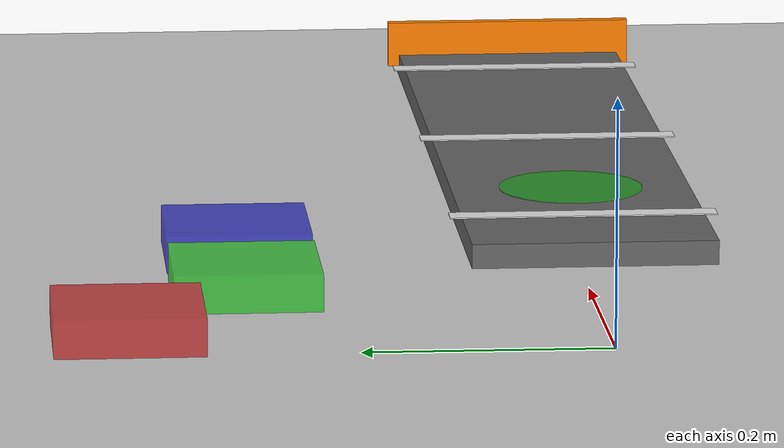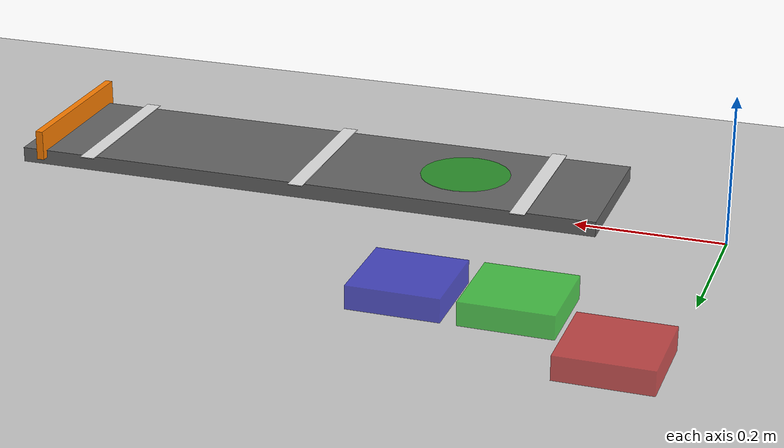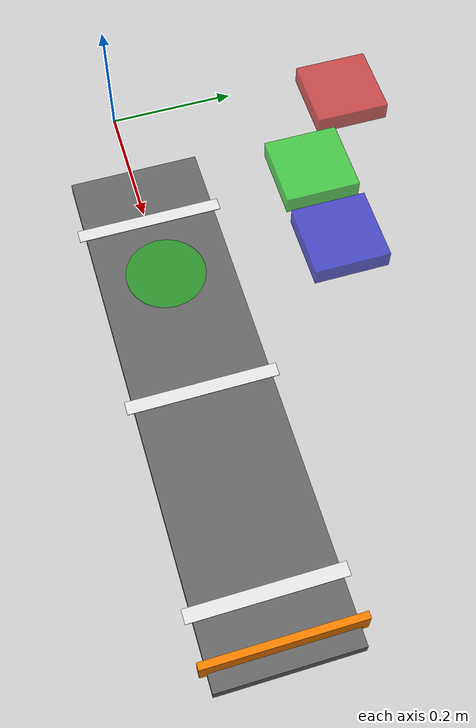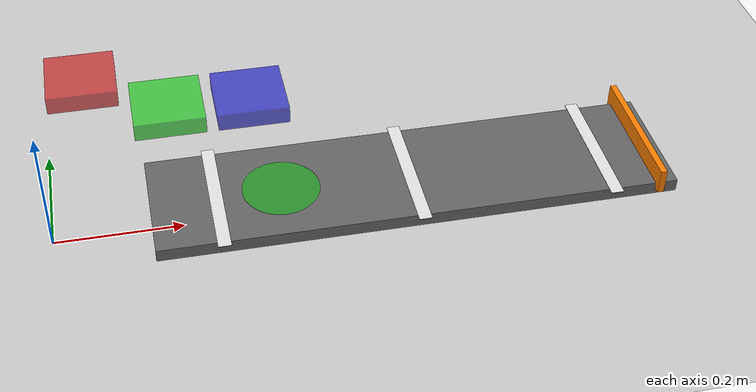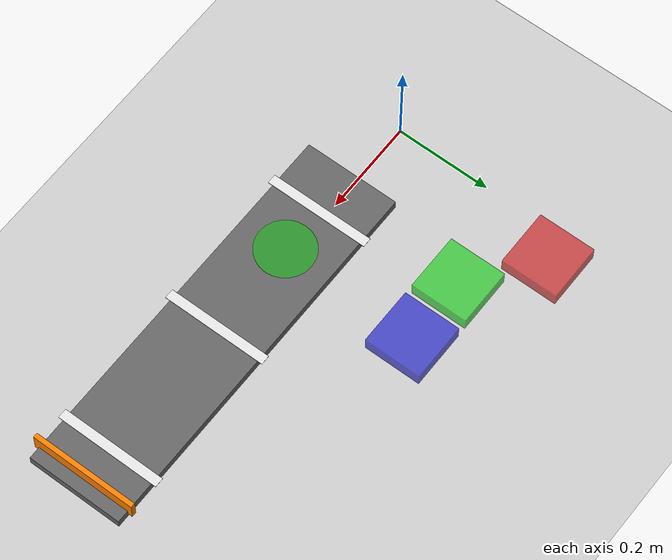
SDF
<?xml version="1.0" ?>
<sdf version="1.7">
  <world name="default">

    <gui fullscreen="0">
      <!-- Camera framed on this scene's workspace -->
      <plugin filename="MinimalScene" name="3D View">
        <gz-gui>
          <title>3D View</title>
          <property type="bool" key="showTitleBar">false</property>
          <property type="string" key="state">docked</property>
        </gz-gui>
        <engine>ogre2</engine>
        <scene>scene</scene>
        <ambient_light>0.4 0.4 0.4</ambient_light>
        <background_color>0.8 0.8 0.8</background_color>
        <camera_pose>-1.0 -1.3 1.1 0 0.47 0.79</camera_pose>
      </plugin>
      <plugin filename="EntityContextMenuPlugin" name="Entity context menu">
        <gz-gui>
          <property key="state" type="string">floating</property>
          <property key="width" type="double">5</property>
          <property key="height" type="double">5</property>
          <property key="showTitleBar" type="bool">false</property>
        </gz-gui>
      </plugin>
      <plugin filename="GzSceneManager" name="Scene Manager">
        <gz-gui>
          <property key="resizable" type="bool">false</property>
          <property key="width" type="double">5</property>
          <property key="height" type="double">5</property>
          <property key="state" type="string">floating</property>
          <property key="showTitleBar" type="bool">false</property>
        </gz-gui>
      </plugin>
      <plugin filename="InteractiveViewControl" name="Interactive view control">
        <gz-gui>
          <property key="resizable" type="bool">false</property>
          <property key="width" type="double">5</property>
          <property key="height" type="double">5</property>
          <property key="state" type="string">floating</property>
          <property key="showTitleBar" type="bool">false</property>
        </gz-gui>
      </plugin>
      <plugin filename="CameraTracking" name="Camera Tracking">
        <gz-gui>
          <property key="resizable" type="bool">false</property>
          <property key="width" type="double">5</property>
          <property key="height" type="double">5</property>
          <property key="state" type="string">floating</property>
          <property key="showTitleBar" type="bool">false</property>
        </gz-gui>
      </plugin>
      <plugin filename="MarkerManager" name="Marker manager">
        <gz-gui>
          <property key="resizable" type="bool">false</property>
          <property key="width" type="double">5</property>
          <property key="height" type="double">5</property>
          <property key="state" type="string">floating</property>
          <property key="showTitleBar" type="bool">false</property>
        </gz-gui>
      </plugin>
      <plugin filename="SelectEntities" name="Select Entities">
        <gz-gui>
          <property key="resizable" type="bool">false</property>
          <property key="width" type="double">5</property>
          <property key="height" type="double">5</property>
          <property key="state" type="string">floating</property>
          <property key="showTitleBar" type="bool">false</property>
        </gz-gui>
      </plugin>
      <plugin filename="Spawn" name="Spawn Entities">
        <gz-gui>
          <property key="resizable" type="bool">false</property>
          <property key="width" type="double">5</property>
          <property key="height" type="double">5</property>
          <property key="state" type="string">floating</property>
          <property key="showTitleBar" type="bool">false</property>
        </gz-gui>
      </plugin>
      <plugin filename="VisualizationCapabilities" name="Visualization Capabilities">
        <gz-gui>
          <property key="resizable" type="bool">false</property>
          <property key="width" type="double">5</property>
          <property key="height" type="double">5</property>
          <property key="state" type="string">floating</property>
          <property key="showTitleBar" type="bool">false</property>
        </gz-gui>
      </plugin>
      <plugin filename="WorldControl" name="World control">
        <gz-gui>
          <title>World control</title>
          <property type="bool" key="showTitleBar">false</property>
          <property type="bool" key="resizable">false</property>
          <property type="double" key="height">72</property>
          <property type="double" key="z">1</property>
          <property type="string" key="state">floating</property>
          <anchors target="3D View">
            <line own="left" target="left"/>
            <line own="bottom" target="bottom"/>
          </anchors>
        </gz-gui>
        <play_pause>true</play_pause>
        <step>true</step>
        <start_paused>true</start_paused>
        <use_event>true</use_event>
      </plugin>
      <plugin filename="WorldStats" name="World stats">
        <gz-gui>
          <title>World stats</title>
          <property type="bool" key="showTitleBar">false</property>
          <property type="bool" key="resizable">false</property>
          <property type="double" key="height">110</property>
          <property type="double" key="width">290</property>
          <property type="double" key="z">1</property>
          <property type="string" key="state">floating</property>
          <anchors target="3D View">
            <line own="right" target="right"/>
            <line own="bottom" target="bottom"/>
          </anchors>
        </gz-gui>
        <sim_time>true</sim_time>
        <real_time>true</real_time>
        <real_time_factor>true</real_time_factor>
        <iterations>true</iterations>
      </plugin>
      <plugin filename="EntityTree" name="Entity tree">
        <gz-gui>
          <property type="bool" key="showTitleBar">false</property>
          <property type="string" key="state">docked</property>
        </gz-gui>
      </plugin>
    </gui>

    <physics name="default_physics" type="ode">
      <max_step_size>0.001</max_step_size>
      <real_time_factor>1</real_time_factor>
      <gravity>0.0 0.0 -9.8</gravity>
    </physics>

    <plugin filename="gz-sim-physics-system"        name="gz::sim::systems::Physics"/>
    <plugin filename="gz-sim-user-commands-system"  name="gz::sim::systems::UserCommands"/>
    <plugin filename="gz-sim-scene-broadcaster-system" name="gz::sim::systems::SceneBroadcaster"/>
    <plugin filename="gz-sim-sensors-system"        name="gz::sim::systems::Sensors">
      <render_engine>ogre2</render_engine>
    </plugin>
    <plugin filename="gz-sim-contact-system"        name="gz::sim::systems::Contact"/>

    <include>
      <uri>https://fuel.gazebosim.org/1.0/OpenRobotics/models/Sun</uri>
    </include>
    <include>
      <uri>https://fuel.gazebosim.org/1.0/OpenRobotics/models/Ground Plane</uri>
    </include>

    <model name="conveyor_belt">
      <static>true</static>
      <pose>0.55 0.0 0.04 0 0 0</pose>
      <link name="belt">
        <collision name="collision">
          <geometry>
            <box><size>0.80 0.20 0.02</size></box>
          </geometry>
          <surface>
            <friction>
              <ode>
                <!-- High friction along belt (X), low lateral (Y) -->
                <mu>0.8</mu>
                <mu2>0.1</mu2>
                <fdir1>1 0 0</fdir1>
              </ode>
            </friction>
            <contact>
              <ode>
                <kp>1e6</kp>
                <kd>100</kd>
              </ode>
            </contact>
          </surface>
        </collision>
        <visual name="visual">
          <geometry>
            <box><size>0.80 0.20 0.02</size></box>
          </geometry>
          <material>
            <ambient>0.3 0.3 0.3 1</ambient>
            <diffuse>0.4 0.4 0.4 1</diffuse>
            <specular>0.1 0.1 0.1 1</specular>
          </material>
        </visual>
        <!-- Belt stripe markings -->
        <visual name="stripe_1">
          <pose>-0.3 0 0.011 0 0 0</pose>
          <geometry><box><size>0.02 0.22 0.001</size></box></geometry>
          <material><ambient>0.9 0.9 0.9 1</ambient><diffuse>0.9 0.9 0.9 1</diffuse></material>
        </visual>
        <visual name="stripe_2">
          <pose>0.0 0 0.011 0 0 0</pose>
          <geometry><box><size>0.02 0.22 0.001</size></box></geometry>
          <material><ambient>0.9 0.9 0.9 1</ambient><diffuse>0.9 0.9 0.9 1</diffuse></material>
        </visual>
        <visual name="stripe_3">
          <pose>0.3 0 0.011 0 0 0</pose>
          <geometry><box><size>0.02 0.22 0.001</size></box></geometry>
          <material><ambient>0.9 0.9 0.9 1</ambient><diffuse>0.9 0.9 0.9 1</diffuse></material>
        </visual>
      </link>
    </model>

    <!-- Belt entry end-stop (far from robot) -->
    <model name="belt_entry_marker">
      <static>true</static>
      <pose>0.92 0.0 0.06 0 0 0</pose>
      <link name="link">
        <visual name="visual">
          <geometry><box><size>0.01 0.22 0.04</size></box></geometry>
          <material><ambient>1 0.5 0 1</ambient><diffuse>1 0.5 0 1</diffuse></material>
        </visual>
        <collision name="collision">
          <geometry><box><size>0.01 0.22 0.04</size></box></geometry>
        </collision>
      </link>
    </model>

    <!-- Pick zone marker (UR3 reachable area) -->
    <model name="pick_zone_marker">
      <static>true</static>
      <pose>0.35 0.0 0.051 0 0 0</pose>
      <link name="link">
        <visual name="visual">
          <geometry><cylinder><radius>0.06</radius><length>0.001</length></cylinder></geometry>
          <material>
            <ambient>0.0 0.8 0.0 0.5</ambient>
            <diffuse>0.0 0.8 0.0 0.5</diffuse>
          </material>
          <transparency>0.5</transparency>
        </visual>
      </link>
    </model>

    <!-- Sorting bins on the side table -->
    <model name="bin_red">
      <static>true</static>
      <pose>0.06 0.38 0.0 0 0 0</pose>
      <link name="link">
        <collision name="c"><geometry><box><size>0.12 0.12 0.06</size></box></geometry></collision>
        <visual name="v">
          <geometry><box><size>0.12 0.12 0.06</size></box></geometry>
          <material><ambient>0.8 0.1 0.1 0.7</ambient><diffuse>0.8 0.1 0.1 0.7</diffuse></material>
        </visual>
      </link>
    </model>

    <model name="bin_green">
      <static>true</static>
      <pose>0.20 0.28 0.0 0 0 0</pose>
      <link name="link">
        <collision name="c"><geometry><box><size>0.12 0.12 0.06</size></box></geometry></collision>
        <visual name="v">
          <geometry><box><size>0.12 0.12 0.06</size></box></geometry>
          <material><ambient>0.1 0.8 0.1 0.7</ambient><diffuse>0.1 0.8 0.1 0.7</diffuse></material>
        </visual>
      </link>
    </model>

    <model name="bin_blue">
      <static>true</static>
      <pose>0.34 0.28 0.0 0 0 0</pose>
      <link name="link">
        <collision name="c"><geometry><box><size>0.12 0.12 0.06</size></box></geometry></collision>
        <visual name="v">
          <geometry><box><size>0.12 0.12 0.06</size></box></geometry>
          <material><ambient>0.1 0.1 0.8 0.7</ambient><diffuse>0.1 0.1 0.8 0.7</diffuse></material>
        </visual>
      </link>
    </model>

    <!-- Matches the GUI's MinimalScene ambient_light/background_color above -->
    <scene>
      <ambient>0.4 0.4 0.4 1</ambient>
      <background>0.8 0.8 0.8 1</background>
      <shadows>true</shadows>
      <grid>false</grid>
    </scene>

    <!-- Showcase camera for README GIFs (off unless something subscribes to showcase_cam_conveyor/image) -->
    <model name="showcase_cam_conveyor">
      <static>true</static>
      <pose>0.75 -1.05 0.85 0 0.5479 1.7813</pose>
      <link name="link">
        <sensor name="showcase_cam_conveyor" type="camera">
          <always_on>0</always_on>
          <update_rate>15</update_rate>
          <topic>showcase_cam_conveyor/image</topic>
          <camera>
            <horizontal_fov>1.15</horizontal_fov>
            <image><width>960</width><height>540</height><format>R8G8B8</format></image>
            <clip><near>0.1</near><far>8</far></clip>
          </camera>
        </sensor>
      </link>
    </model>
</world>
</sdf>
